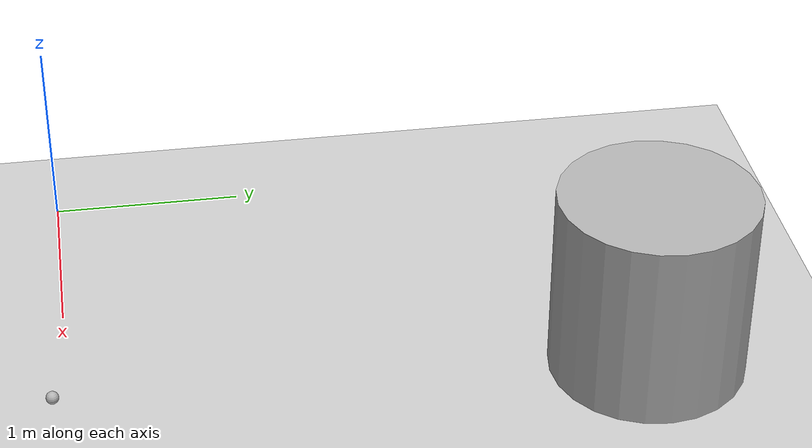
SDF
<sdf version='1.9'>
  <world name='empty'>
    <physics name='1ms' type='ignored'>
      <max_step_size>0.001</max_step_size>
      <real_time_factor>1</real_time_factor>
      <real_time_update_rate>1000</real_time_update_rate>
    </physics>
    <plugin name='gz::sim::systems::Physics' filename='gz-sim-physics-system'/>
    <plugin name='gz::sim::systems::UserCommands' filename='gz-sim-user-commands-system'/>
    <plugin name='gz::sim::systems::SceneBroadcaster' filename='gz-sim-scene-broadcaster-system'/>
    <plugin name='gz::sim::systems::Sensors' filename='gz-sim-sensors-system'>
      <render_engine>ogre2</render_engine>
    </plugin>
    <plugin name='gz::sim::systems::Contact' filename='gz-sim-contact-system'/>
    <gravity>0 0 -9.8</gravity>
    <magnetic_field>6e-06 2.3e-05 -4.2e-05</magnetic_field>
    <atmosphere type='adiabatic'/>
    <scene>
      <ambient>0.4 0.4 0.4 1</ambient>
      <background>0.7 0.7 0.7 1</background>
      <shadows>true</shadows>
    </scene>
    <model name='ground_plane'>
      <static>true</static>
      <link name='link'>
        <collision name='collision'>
          <geometry>
            <plane>
              <normal>0 0 1</normal>
              <size>100 100</size>
            </plane>
          </geometry>
          <surface>
            <friction>
              <ode/>
            </friction>
            <bounce/>
            <contact/>
          </surface>
        </collision>
        <visual name='visual'>
          <geometry>
            <plane>
              <normal>0 0 1</normal>
              <size>100 100</size>
            </plane>
          </geometry>
          <material>
            <ambient>0.8 0.8 0.8 1</ambient>
            <diffuse>0.8 0.8 0.8 1</diffuse>
            <specular>0.8 0.8 0.8 1</specular>
          </material>
        </visual>
        <pose>0 0 0 0 -0 0</pose>
        <inertial>
          <pose>0 0 0 0 -0 0</pose>
          <mass>1</mass>
          <inertia>
            <ixx>1</ixx>
            <ixy>0</ixy>
            <ixz>0</ixz>
            <iyy>1</iyy>
            <iyz>0</iyz>
            <izz>1</izz>
          </inertia>
        </inertial>
        <enable_wind>false</enable_wind>
      </link>
      <pose>0 0 0 0 -0 0</pose>
      <self_collide>false</self_collide>
    </model>
    <model name='cylinder'>
      <pose>1.81414 2.90907 0.499999 0 0 0</pose>
      <link name='cylinder_link'>
        <inertial>
          <inertia>
            <ixx>0.14580000000000001</ixx>
            <ixy>0</ixy>
            <ixz>0</ixz>
            <iyy>0.14580000000000001</iyy>
            <iyz>0</iyz>
            <izz>0.125</izz>
          </inertia>
          <mass>1</mass>
          <pose>0 0 0 0 -0 0</pose>
        </inertial>
        <collision name='cylinder_collision'>
          <geometry>
            <cylinder>
              <radius>0.5</radius>
              <length>1</length>
            </cylinder>
          </geometry>
          <surface>
            <friction>
              <ode/>
            </friction>
            <bounce/>
            <contact/>
          </surface>
        </collision>
        <visual name='cylinder_visual'>
          <geometry>
            <cylinder>
              <radius>0.5</radius>
              <length>1</length>
            </cylinder>
          </geometry>
          <material>
            <ambient>0.3 0.3 0.3 1</ambient>
            <diffuse>0.7 0.7 0.7 1</diffuse>
            <specular>1 1 1 1</specular>
          </material>
        </visual>
        <pose>0 0 0 0 -0 0</pose>
        <enable_wind>false</enable_wind>
      </link>
      <static>false</static>
      <self_collide>false</self_collide>
    </model>
    <model name='sphere'>
      <pose>1.69298 -0.065429 0.033 0 -0 0</pose>
      <link name='sphere_link'>
        <inertial>
          <inertia>
            <ixx>0.10000000000000001</ixx>
            <ixy>0</ixy>
            <ixz>0</ixz>
            <iyy>0.10000000000000001</iyy>
            <iyz>0</iyz>
            <izz>0.10000000000000001</izz>
          </inertia>
          <mass>1</mass>
          <pose>0 0 0 0 -0 0</pose>
        </inertial>
        <collision name='sphere_collision'>
          <geometry>
            <sphere>
              <radius>0.033000000000000002</radius>
            </sphere>
          </geometry>
          <surface>
            <friction>
              <ode/>
            </friction>
            <bounce/>
            <contact/>
          </surface>
        </collision>
        <visual name='sphere_visual'>
          <geometry>
            <sphere>
              <radius>0.033000000000000002</radius>
            </sphere>
          </geometry>
          <material>
            <ambient>0.3 0.3 0.3 1</ambient>
            <diffuse>0.7 0.7 0.7 1</diffuse>
            <specular>1 1 1 1</specular>
          </material>
        </visual>
        <pose>0 0 0 0 -0 0</pose>
        <enable_wind>false</enable_wind>
      </link>
      <static>false</static>
      <self_collide>false</self_collide>
    </model>
    <light name='sun' type='directional'>
      <pose>0 0 10 0 -0 0</pose>
      <cast_shadows>true</cast_shadows>
      <intensity>1</intensity>
      <direction>-0.5 0.1 -0.9</direction>
      <diffuse>0.8 0.8 0.8 1</diffuse>
      <specular>0.2 0.2 0.2 1</specular>
      <attenuation>
        <range>1000</range>
        <linear>0.01</linear>
        <constant>0.90000000000000002</constant>
        <quadratic>0.001</quadratic>
      </attenuation>
      <spot>
        <inner_angle>0</inner_angle>
        <outer_angle>0</outer_angle>
        <falloff>0</falloff>
      </spot>
    </light>
  </world>
</sdf>
